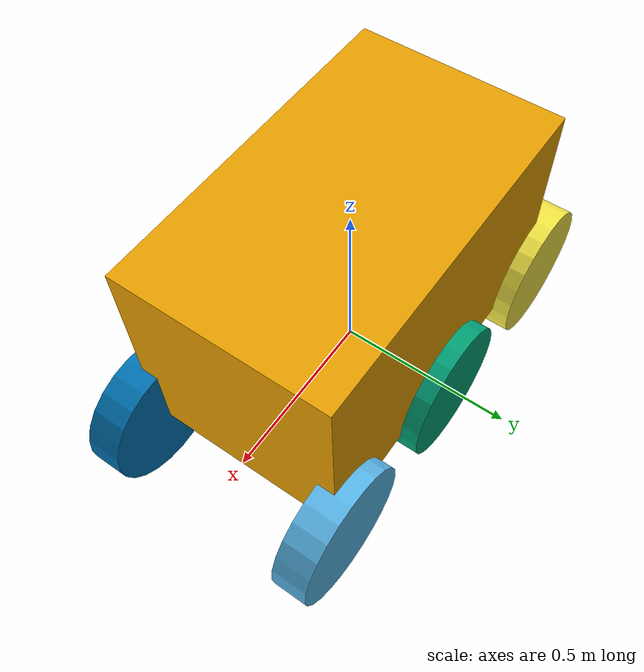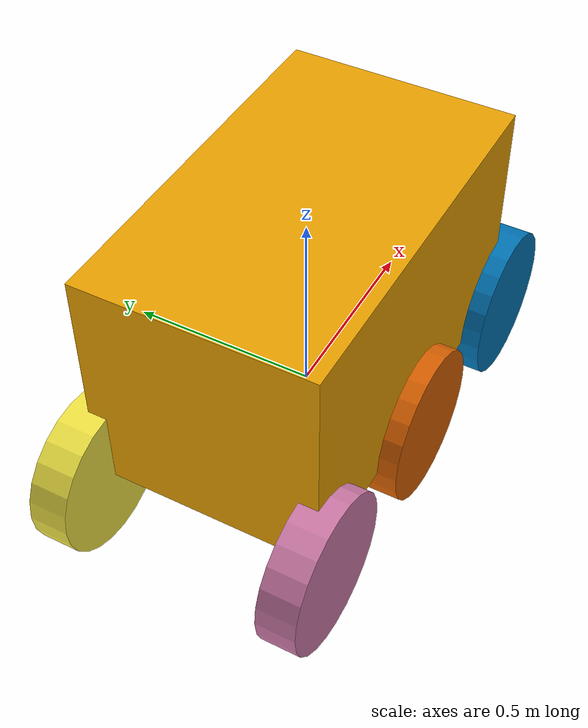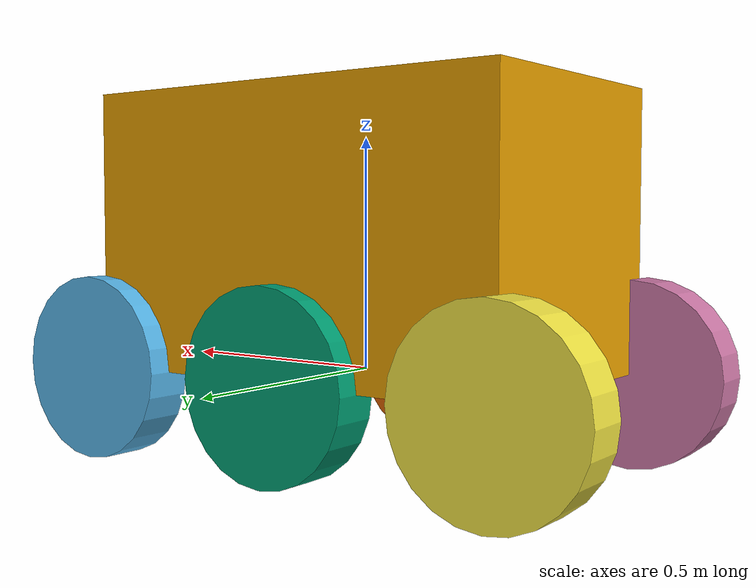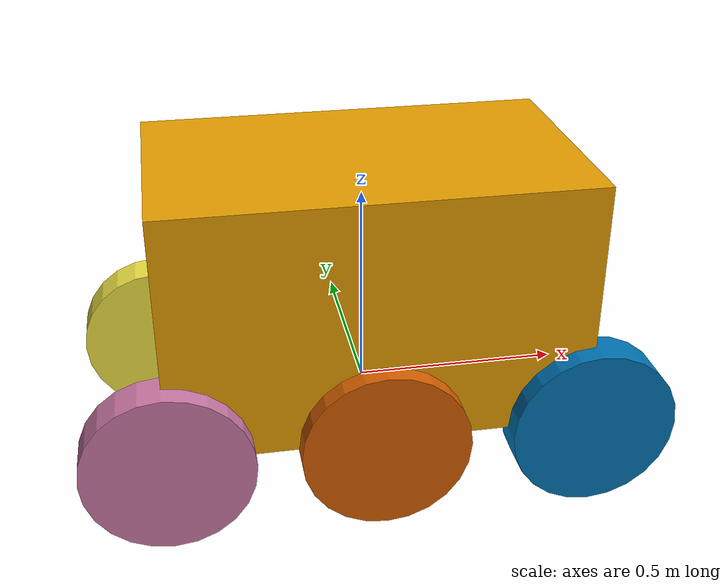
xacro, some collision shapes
<?xml version='1.0'?>
<robot name="myrobot" xmlns:xacro="http://www.ros.org/wiki/xacro">
<!--Chassis  Link /-->

 <link name='chassis'>

   <visual name='chassis_visual'>

      <origin xyz="0 0 .3" rpy=" 0 0 0"/>

      <geometry>
        <box size="1. .6 .6"/>
      </geometry>

    </visual>

   <inertial>

      <mass value="20.0"/>
      <origin xyz="0 0 0.3" rpy=" 0 0 0"/>
      <inertia
          ixx="0.5" ixy="0" ixz="0"
          iyy="1.0" iyz="0"
          izz="0.1"
      />

   </inertial>

   <collision name='collision'>
      <geometry>
        <box size="1. .6 .6"/>
      </geometry>
   </collision>
</link>

<!-- ++++++++++++++++three Left wheels joints+++++++++++++++++++++++++++++++ /-->

  <joint name="joint1" type="continuous">
    <parent link="chassis"/>
    <child link="link1"/>
    <origin xyz="0.5 0.3 0" rpy="0 0 0"/>
    <axis xyz="0 1 0" rpy="0 0 0"/>
    <limit effort="100" velocity="100"/>
    <joint_properties damping="0.0" friction="0.0"/>
  </joint>

 <joint name="joint2" type="continuous">
    <parent link="chassis"/>
    <child link="link2"/>
   <origin xyz="0 0.3 0" rpy="0 0 0"/>
    <axis xyz="0 1 0" rpy="0 0 0"/>
    <limit effort="100" velocity="100"/>
    <joint_properties damping="0.0" friction="0.0"/>
  </joint>

  <joint name="joint3" type="continuous">
    <parent link="chassis"/>
    <child link="link3"/>
    <origin xyz="-0.5 0.3 0" rpy="0 0 0"/>
    <axis xyz="0 1 0" rpy="0 0 0"/>
    <limit effort="100" velocity="100"/>
    <joint_properties damping="0.0" friction="0.0"/>
  </joint>

<!-- ++++++++++++++++three right wheels joints+++++++++++++++++++++++++++++++ /-->

 <joint name="joint4" type="continuous">
    <parent link="chassis"/>
    <child link="link4"/>
    <origin xyz="0.5 -0.3 0" rpy="0 0 0"/>
    <axis xyz="0 1 0" rpy="0 0 0"/>
    <limit effort="100" velocity="100"/>
    <joint_properties damping="0.0" friction="0.0"/>
  </joint>

<joint name="joint5" type="continuous">
    <parent link="chassis"/>
    <child link="link5"/>
   <origin xyz="0 -0.3 0" rpy="0 0 0"/>
    <axis xyz="0 1 0" rpy="0 0 0"/>
    <limit effort="100" velocity="100"/>
    <joint_properties damping="0.0" friction="0.0"/>
  </joint>

  <joint name="joint6" type="continuous">
    <parent link="chassis"/>
    <child link="link6"/>
    <origin xyz="-0.5 -0.3 0" rpy="0 0 0"/>
    <axis xyz="0 1 0" rpy="0 0 0"/>
    <limit effort="100" velocity="100"/>
    <joint_properties damping="0.0" friction="0.0"/>
  </joint>

<!--three left wheel Links /-->

<link name="link1">

    <visual name="left_wheel_visual">
      <origin xyz="0 0 0" rpy="0 1.5707 1.5707"/>
      <geometry>
        <cylinder radius="0.2" length="0.1"/>
      </geometry>
    </visual>

    <collision name="collision">
      <origin xyz="0 0 0" rpy="0 1.5707 1.5707"/>
      <geometry>
        <cylinder radius="0.2" length="0.1"/>
      </geometry>
    </collision>

    <inertial>
      <origin xyz="0 0 0" rpy="0 1.5707 1.5707"/>
      <mass value="5"/>
      <cylinder_inertia m="5" r="0.1" h="0.05"/>
      <inertia
        ixx="1.0" ixy="0.0" ixz="0.0"
        iyy="1.0" iyz="0.0"
        izz="1.0"/>
    </inertial>

 </link>

<link name="link2">

    <visual name="left2_wheel_visual">
      <origin xyz="0 0 0" rpy="0 1.5707 1.5707"/>
      <geometry>
        <cylinder radius="0.2" length="0.1"/>
      </geometry>
    </visual>

    <collision name="collision">
      <origin xyz="0 0 0" rpy="0 1.5707 1.5707"/>
      <geometry>
        <cylinder radius="0.2" length="0.1"/>
      </geometry>
    </collision>

    <inertial>
      <origin xyz="0 0 0" rpy="0 1.5707 1.5707"/>
      <mass value="5"/>
      <cylinder_inertia m="5" r="0.1" h="0.05"/>
      <inertia
        ixx="1.0" ixy="0.0" ixz="0.0"
        iyy="1.0" iyz="0.0"
        izz="1.0"/>
    </inertial>

 </link>

<link name="link3">

    <visual name="left3_wheel_visual">
      <origin xyz="0 0 0" rpy="0 1.5707 1.5707"/>
      <geometry>
        <cylinder radius="0.2" length="0.1"/>
      </geometry>
    </visual>

    <collision name="collision">
      <origin xyz="0 0 0" rpy="0 1.5707 1.5707"/>
      <geometry>
        <cylinder radius="0.2" length="0.1"/>
      </geometry>
    </collision>

    <inertial>
      <origin xyz="0 0 0" rpy="0 1.5707 1.5707"/>
      <mass value="5"/>
      <cylinder_inertia m="5" r="0.1" h="0.05"/>
      <inertia
        ixx="1.0" ixy="0.0" ixz="0.0"
        iyy="1.0" iyz="0.0"
        izz="1.0"/>
    </inertial>

 </link>

<!--three Right Wheel links /-->

  <link name="link4">

    <visual name="right_wheel_visual">

      <origin xyz="0 0 0" rpy="0 1.5707 1.5707"/>

      <geometry>
        <cylinder radius="0.2" length="0.1"/>
      </geometry>

    </visual>

    <collision name="collision">

      <origin xyz="0 0 0" rpy="0 1.5707 1.5707"/>

      <geometry>
        <cylinder radius="0.2" length="0.1"/>
      </geometry>

    </collision>

    <inertial>

      <origin xyz="0 0 0" rpy="0 1.5707 1.5707"/>
      <mass value="5"/>
      <cylinder_inertia m="5" r="0.1" h="0.05"/>

      <inertia
        ixx="1.0" ixy="0.0" ixz="0.0"
        iyy="1.0" iyz="0.0"
        izz="1.0"/>
      </inertial>

  </link>

<link name="link5">

    <visual name="right4_wheel_visual">

      <origin xyz="0 0 0" rpy="0 1.5707 1.5707"/>

      <geometry>
        <cylinder radius="0.2" length="0.1"/>
      </geometry>

    </visual>

    <collision name="collision">

      <origin xyz="0 0 0" rpy="0 1.5707 1.5707"/>

      <geometry>
        <cylinder radius="0.2" length="0.1"/>
      </geometry>

    </collision>

    <inertial>

      <origin xyz="0 0 0" rpy="0 1.5707 1.5707"/>
      <mass value="5"/>
      <cylinder_inertia m="5" r="0.1" h="0.05"/>

      <inertia
        ixx="1.0" ixy="0.0" ixz="0.0"
        iyy="1.0" iyz="0.0"
        izz="1.0"/>
      </inertial>

  </link>

<link name="link6">

    <visual name="right11_wheel_visual">

      <origin xyz="0 0 0" rpy="0 1.5707 1.5707"/>

      <geometry>
        <cylinder radius="0.2" length="0.1"/>
      </geometry>

    </visual>

    <collision name="collision">

      <origin xyz="0 0 0" rpy="0 1.5707 1.5707"/>

      <geometry>
        <cylinder radius="0.2" length="0.1"/>
      </geometry>

    </collision>

    <inertial>

      <origin xyz="0 0 0" rpy="0 1.5707 1.5707"/>
      <mass value="5"/>
      <cylinder_inertia m="5" r="0.1" h="0.05"/>

      <inertia
        ixx="1.0" ixy="0.0" ixz="0.0"
        iyy="1.0" iyz="0.0"
        izz="1.0"/>
      </inertial>

  </link>

<!-- ++++++++++++++++++  Kinect  +++++++++++++++++++++++++++++ /-->
<!--kinect joint /-->

<joint name="kinect_joint" type="fixed">

    <origin xyz=".15 0 .05" rpy="0 0 0"/>

    <parent link="chassis"/>
    <child link="camera_link"/>

</joint>

<!--Kinect  Link /-->

<link name="camera_link">

 <visual>

      <origin xyz="0 0 0.05" rpy="0 0 0"/>

      <geometry>

      <mesh filename="package://mybot_description/meshes/kinect.dae"/>

      </geometry>

 </visual>

 <collision>
    <origin xyz="0 0 0" rpy="0 0 0"/>

    <geometry>
    <box size="0.1 0.1 0.1"/>
    </geometry>

 </collision>

 <inertial>
     <mass value="1e-5" />
     <origin xyz="0 0 0" rpy="0 0 0"/>
     <inertia ixx="1e-6" ixy="0" ixz="0" iyy="1e-6" iyz="0" izz="1e-6" />
 </inertial>

</link>

<!--  Kinect Optical Link and joints   /-->

<joint name="kinect_optical_joint" type="fixed">

<origin xyz="0 0 0" rpy="-1.5707 0 -1.5707"/> <!-- To invert the coordinates from image convention (Z is forward) to normal xyz /-->
<parent link="camera_link"/>
<child link="kinect_optical"/>
</joint>

<!--Virtual link to project the images to, and then flip it to us as its joint is flipped  /-->
<link name="kinect_optical">
</link>

</robot>
